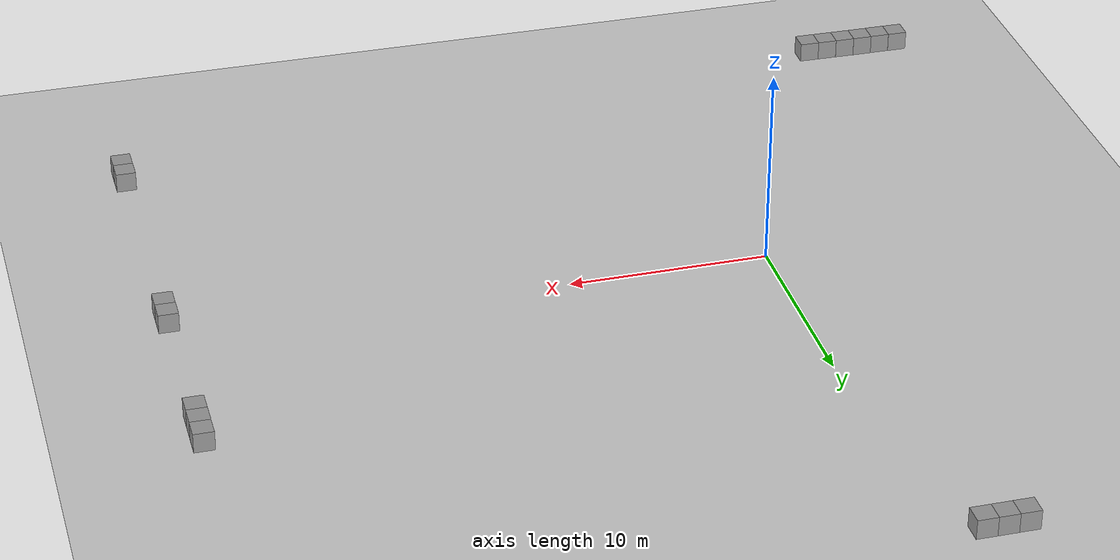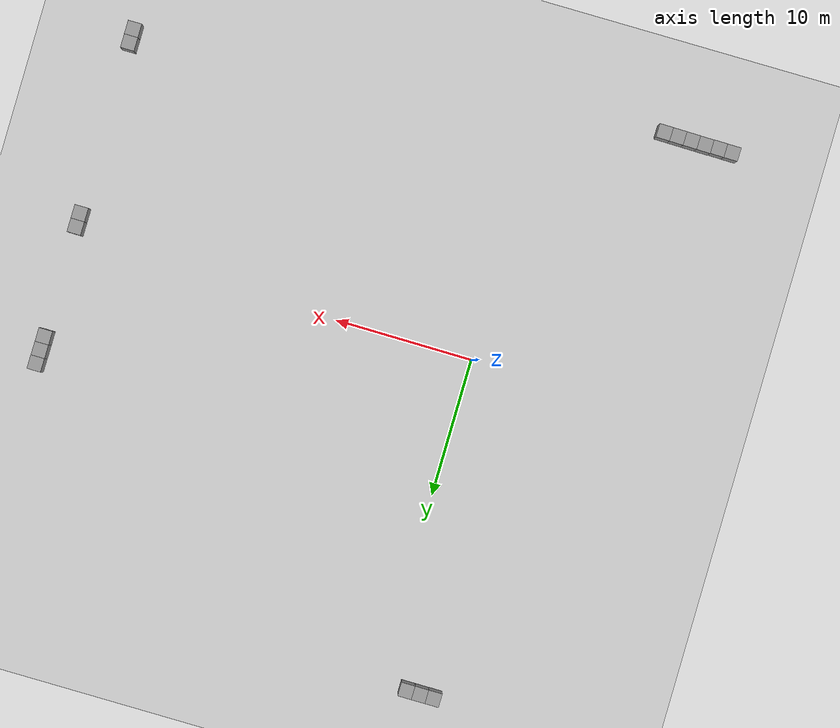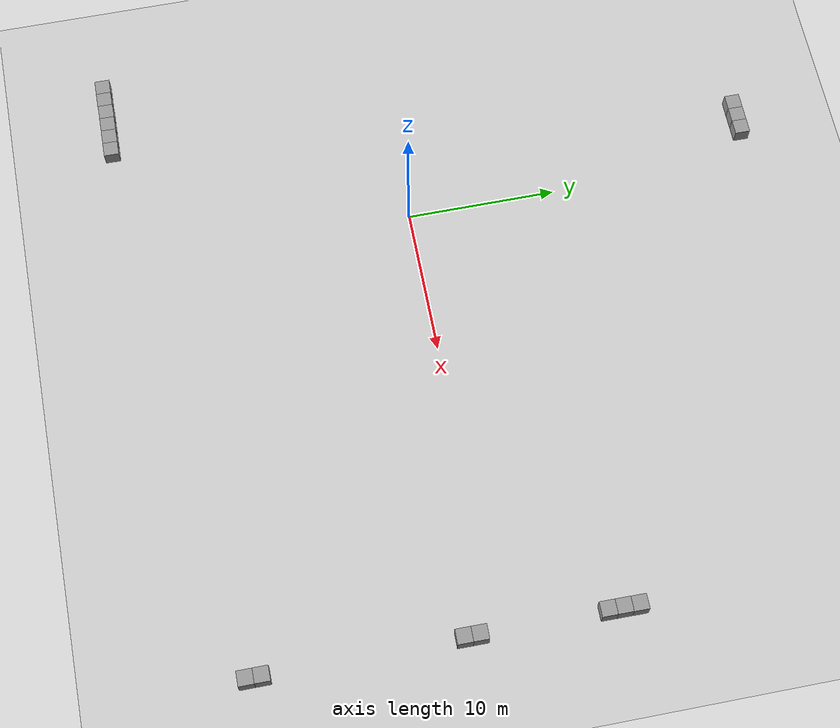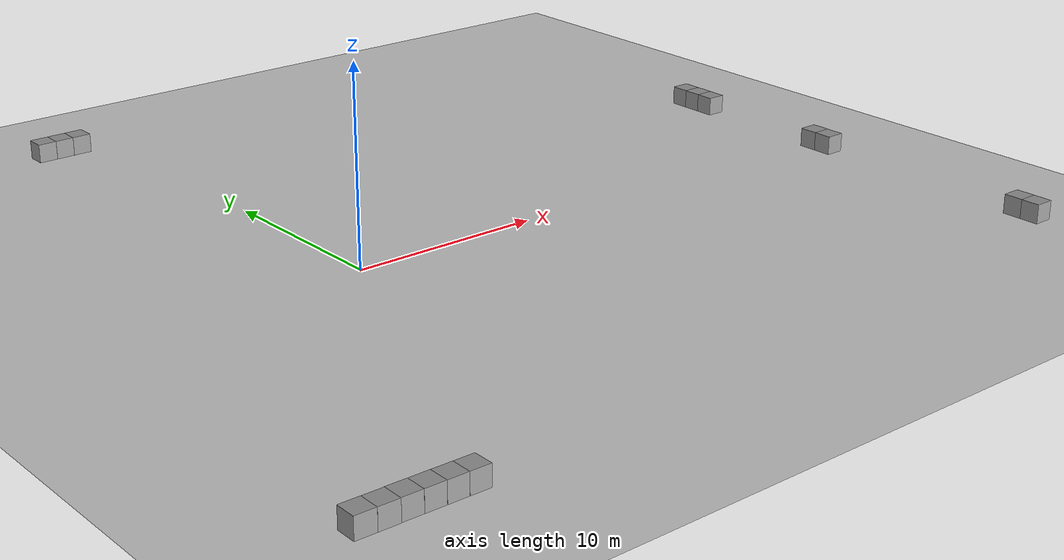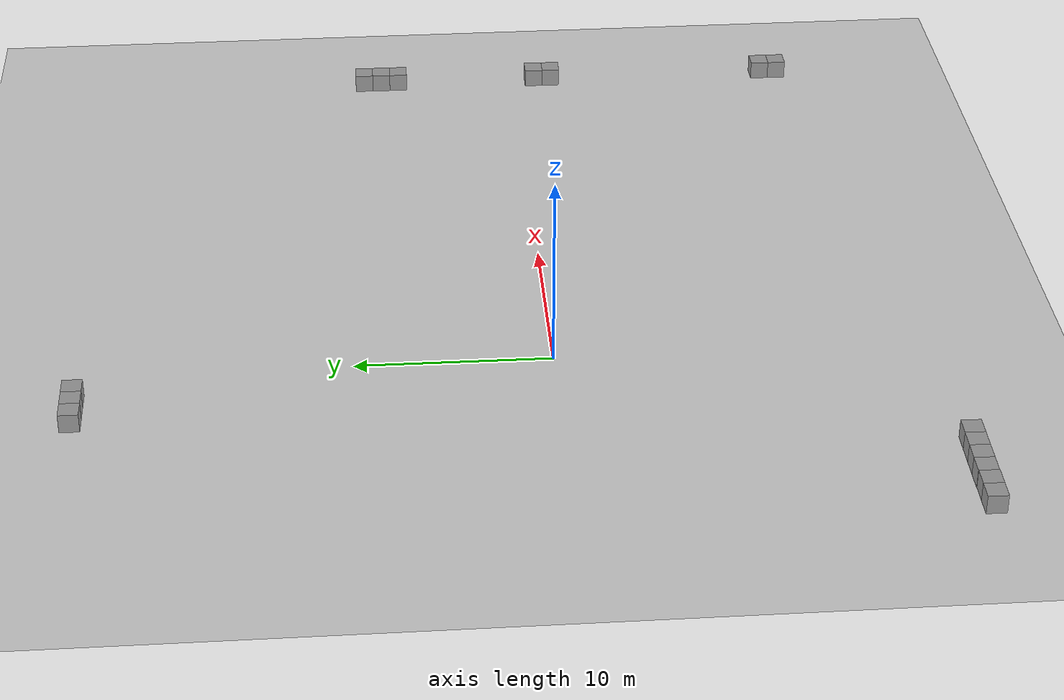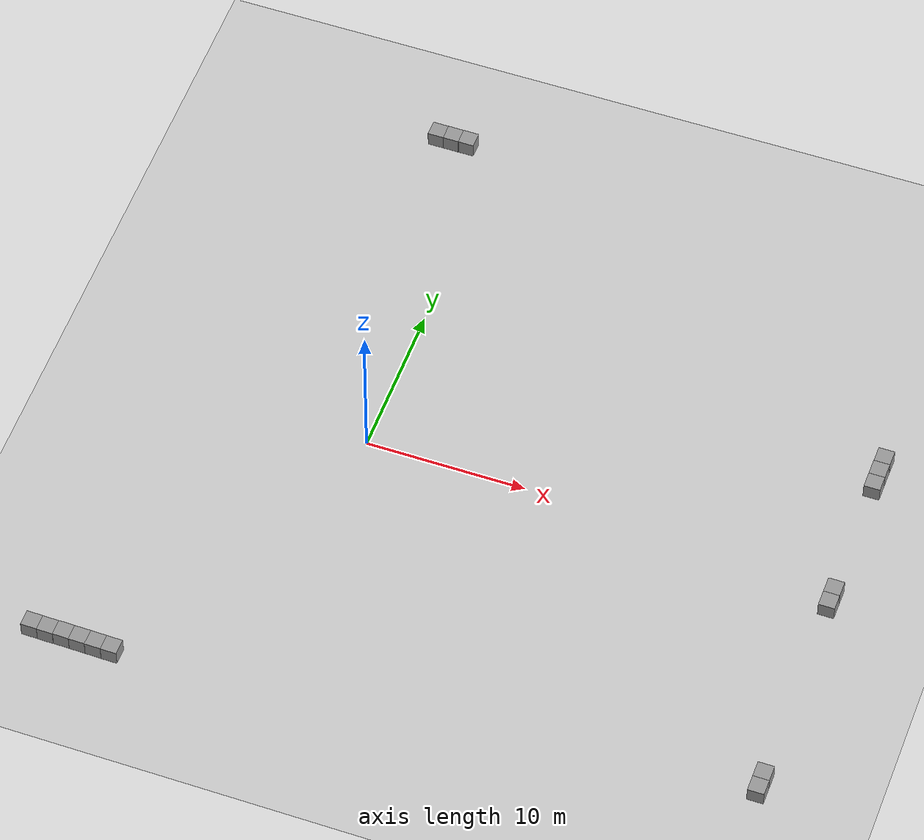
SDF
<sdf version="1.6">
 <world name="default">
  <model name="ground_plane">
   <static>1</static>
   <link name="link">
    <collision name="collision">
     <geometry><plane><normal>0 0 1</normal><size>100 100</size></plane></geometry>
     <surface><friction><ode><mu>100</mu><mu2>50</mu2></ode></friction></surface>
    </collision>
    <visual name="visual">
     <cast_shadows>0</cast_shadows>
     <geometry><plane><normal>0 0 1</normal><size>100 100</size></plane></geometry>
     <material>
      <script><uri>file://media/materials/scripts/gazebo.material</uri><name>Gazebo/Grey</name></script>
     </material>
    </visual>
   </link>
  </model>
  <light name="sun" type="directional">
   <pose>0 0 10 0 -0 0</pose>
   <diffuse>0.8 0.8 0.8 1</diffuse>
   <specular>0.1 0.1 0.1 1</specular>
   <attenuation>
    <range>1000</range>
    <constant>0.9</constant>
    <linear>0.01</linear>
    <quadratic>0.001</quadratic>
   </attenuation>
   <direction>-0.5 0.5 -1</direction>
  </light>
  <gravity>0 0 -9.8</gravity>
  <magnetic_field>6e-06 2.3e-05 -4.2e-05</magnetic_field>
  <atmosphere type="adiabatic"/>
  <physics name="default_physics" default="0" type="ode">
   <max_step_size>0.001</max_step_size>
   <real_time_factor>1</real_time_factor>
   <real_time_update_rate>1000</real_time_update_rate>
  </physics>
  <scene><ambient>0.4 0.4 0.4 1</ambient><background>0.7 0.7 0.7 1</background><shadows>1</shadows></scene>
  <spherical_coordinates>
   <surface_model>EARTH_WGS84</surface_model>
   <latitude_deg>0</latitude_deg>
   <longitude_deg>0</longitude_deg>
   <elevation>0</elevation>
   <heading_deg>0</heading_deg>
  </spherical_coordinates>
  <model name="unit_box_0">
   <pose>-4.06034 23.7047 0.499995 -1e-05 -0 -0.003233</pose>
   <link name="link">
    <inertial>
     <mass>1</mass>
     <inertia>
      <ixx>0.166667</ixx>
      <ixy>0</ixy>
      <ixz>0</ixz>
      <iyy>0.166667</iyy>
      <iyz>0</iyz>
      <izz>0.166667</izz>
     </inertia>
    </inertial>
    <collision name="collision"><geometry><box><size>1 1 1</size></box></geometry></collision>
    <visual name="visual">
     <geometry><box><size>1 1 1</size></box></geometry>
     <material>
      <script><name>Gazebo/Grey</name><uri>file://media/materials/scripts/gazebo.material</uri></script>
     </material>
    </visual>
   </link>
  </model>
  <model name="unit_box_0_clone">
   <pose>-3.06031 23.7067 0.499995 0 -1e-05 -0.003245</pose>
   <link name="link">
    <inertial>
     <mass>1</mass>
     <inertia>
      <ixx>0.166667</ixx>
      <ixy>0</ixy>
      <ixz>0</ixz>
      <iyy>0.166667</iyy>
      <iyz>0</iyz>
      <izz>0.166667</izz>
     </inertia>
    </inertial>
    <collision name="collision"><geometry><box><size>1 1 1</size></box></geometry></collision>
    <visual name="visual">
     <geometry><box><size>1 1 1</size></box></geometry>
     <material>
      <script><name>Gazebo/Grey</name><uri>file://media/materials/scripts/gazebo.material</uri></script>
     </material>
    </visual>
   </link>
  </model>
  <model name="unit_box_0_clone_0">
   <pose>-2.06028 23.7068 0.499995 -1e-05 -0 -0.003235</pose>
   <link name="link">
    <inertial>
     <mass>1</mass>
     <inertia>
      <ixx>0.166667</ixx>
      <ixy>0</ixy>
      <ixz>0</ixz>
      <iyy>0.166667</iyy>
      <iyz>0</iyz>
      <izz>0.166667</izz>
     </inertia>
    </inertial>
    <collision name="collision"><geometry><box><size>1 1 1</size></box></geometry></collision>
    <visual name="visual">
     <geometry><box><size>1 1 1</size></box></geometry>
     <material>
      <script><name>Gazebo/Grey</name><uri>file://media/materials/scripts/gazebo.material</uri></script>
     </material>
    </visual>
   </link>
  </model>
  <model name="unit_box_0_clone_1">
   <pose>-8.59461 -19.2136 0.499995 1e-05 -0 -0.010423</pose>
   <link name="link">
    <inertial>
     <mass>1</mass>
     <inertia>
      <ixx>0.166667</ixx>
      <ixy>0</ixy>
      <ixz>0</ixz>
      <iyy>0.166667</iyy>
      <iyz>0</iyz>
      <izz>0.166667</izz>
     </inertia>
    </inertial>
    <collision name="collision"><geometry><box><size>1 1 1</size></box></geometry></collision>
    <visual name="visual">
     <geometry><box><size>1 1 1</size></box></geometry>
     <material>
      <script><name>Gazebo/Grey</name><uri>file://media/materials/scripts/gazebo.material</uri></script>
     </material>
    </visual>
   </link>
  </model>
  <model name="unit_box_0_clone_2">
   <pose>-9.59454 -19.1989 0.499995 -1e-05 -0 -0.010466</pose>
   <link name="link">
    <inertial>
     <mass>1</mass>
     <inertia>
      <ixx>0.166667</ixx>
      <ixy>0</ixy>
      <ixz>0</ixz>
      <iyy>0.166667</iyy>
      <iyz>0</iyz>
      <izz>0.166667</izz>
     </inertia>
    </inertial>
    <collision name="collision"><geometry><box><size>1 1 1</size></box></geometry></collision>
    <visual name="visual">
     <geometry><box><size>1 1 1</size></box></geometry>
     <material>
      <script><name>Gazebo/Grey</name><uri>file://media/materials/scripts/gazebo.material</uri></script>
     </material>
    </visual>
   </link>
  </model>
  <model name="unit_box_0_clone_3">
   <pose>-10.5946 -19.1852 0.499995 -1e-05 0 -0.010497</pose>
   <link name="link">
    <inertial>
     <mass>1</mass>
     <inertia>
      <ixx>0.166667</ixx>
      <ixy>0</ixy>
      <ixz>0</ixz>
      <iyy>0.166667</iyy>
      <iyz>0</iyz>
      <izz>0.166667</izz>
     </inertia>
    </inertial>
    <collision name="collision"><geometry><box><size>1 1 1</size></box></geometry></collision>
    <visual name="visual">
     <geometry><box><size>1 1 1</size></box></geometry>
     <material>
      <script><name>Gazebo/Grey</name><uri>file://media/materials/scripts/gazebo.material</uri></script>
     </material>
    </visual>
   </link>
  </model>
  <model name="unit_box_0_clone_4">
   <pose>-11.5946 -19.1693 0.499995 0 1e-05 -0.010493</pose>
   <link name="link">
    <inertial>
     <mass>1</mass>
     <inertia>
      <ixx>0.166667</ixx>
      <ixy>0</ixy>
      <ixz>0</ixz>
      <iyy>0.166667</iyy>
      <iyz>0</iyz>
      <izz>0.166667</izz>
     </inertia>
    </inertial>
    <collision name="collision"><geometry><box><size>1 1 1</size></box></geometry></collision>
    <visual name="visual">
     <geometry><box><size>1 1 1</size></box></geometry>
     <material>
      <script><name>Gazebo/Grey</name><uri>file://media/materials/scripts/gazebo.material</uri></script>
     </material>
    </visual>
   </link>
  </model>
  <model name="unit_box_0_clone_5">
   <pose>-12.5948 -19.1733 0.499995 -1e-05 -0 -0.010555</pose>
   <link name="link">
    <inertial>
     <mass>1</mass>
     <inertia>
      <ixx>0.166667</ixx>
      <ixy>0</ixy>
      <ixz>0</ixz>
      <iyy>0.166667</iyy>
      <iyz>0</iyz>
      <izz>0.166667</izz>
     </inertia>
    </inertial>
    <collision name="collision"><geometry><box><size>1 1 1</size></box></geometry></collision>
    <visual name="visual">
     <geometry><box><size>1 1 1</size></box></geometry>
     <material>
      <script><name>Gazebo/Grey</name><uri>file://media/materials/scripts/gazebo.material</uri></script>
     </material>
    </visual>
   </link>
  </model>
  <model name="unit_box_0_clone_6">
   <pose>-13.5947 -19.1578 0.499995 -0 -1e-05 -0.010504</pose>
   <link name="link">
    <inertial>
     <mass>1</mass>
     <inertia>
      <ixx>0.166667</ixx>
      <ixy>0</ixy>
      <ixz>0</ixz>
      <iyy>0.166667</iyy>
      <iyz>0</iyz>
      <izz>0.166667</izz>
     </inertia>
    </inertial>
    <collision name="collision"><geometry><box><size>1 1 1</size></box></geometry></collision>
    <visual name="visual">
     <geometry><box><size>1 1 1</size></box></geometry>
     <material>
      <script><name>Gazebo/Grey</name><uri>file://media/materials/scripts/gazebo.material</uri></script>
     </material>
    </visual>
   </link>
  </model>
  <model name="unit_box_0_clone_7">
   <pose>29.4893 8.80209 0.499995 0 1e-05 -0.004263</pose>
   <link name="link">
    <inertial>
     <mass>1</mass>
     <inertia>
      <ixx>0.166667</ixx>
      <ixy>0</ixy>
      <ixz>0</ixz>
      <iyy>0.166667</iyy>
      <iyz>0</iyz>
      <izz>0.166667</izz>
     </inertia>
    </inertial>
    <collision name="collision"><geometry><box><size>1 1 1</size></box></geometry></collision>
    <visual name="visual">
     <geometry><box><size>1 1 1</size></box></geometry>
     <material>
      <script><name>Gazebo/Grey</name><uri>file://media/materials/scripts/gazebo.material</uri></script>
     </material>
    </visual>
   </link>
  </model>
  <model name="unit_box_0_clone_8">
   <pose>29.4773 7.80206 0.499995 1e-05 0 -0.004377</pose>
   <link name="link">
    <inertial>
     <mass>1</mass>
     <inertia>
      <ixx>0.166667</ixx>
      <ixy>0</ixy>
      <ixz>0</ixz>
      <iyy>0.166667</iyy>
      <iyz>0</iyz>
      <izz>0.166667</izz>
     </inertia>
    </inertial>
    <collision name="collision"><geometry><box><size>1 1 1</size></box></geometry></collision>
    <visual name="visual">
     <geometry><box><size>1 1 1</size></box></geometry>
     <material>
      <script><name>Gazebo/Grey</name><uri>file://media/materials/scripts/gazebo.material</uri></script>
     </material>
    </visual>
   </link>
  </model>
  <model name="unit_box_0_clone_9">
   <pose>29.4726 6.80193 0.499995 0 -1e-05 -0.004368</pose>
   <link name="link">
    <inertial>
     <mass>1</mass>
     <inertia>
      <ixx>0.166667</ixx>
      <ixy>0</ixy>
      <ixz>0</ixz>
      <iyy>0.166667</iyy>
      <iyz>0</iyz>
      <izz>0.166667</izz>
     </inertia>
    </inertial>
    <collision name="collision"><geometry><box><size>1 1 1</size></box></geometry></collision>
    <visual name="visual">
     <geometry><box><size>1 1 1</size></box></geometry>
     <material>
      <script><name>Gazebo/Grey</name><uri>file://media/materials/scripts/gazebo.material</uri></script>
     </material>
    </visual>
   </link>
  </model>
  <model name="unit_box_0_clone_10">
   <pose>29.4636 -1.24829 0.499995 0 -1e-05 -0.005786</pose>
   <link name="link">
    <inertial>
     <mass>1</mass>
     <inertia>
      <ixx>0.166667</ixx>
      <ixy>0</ixy>
      <ixz>0</ixz>
      <iyy>0.166667</iyy>
      <iyz>0</iyz>
      <izz>0.166667</izz>
     </inertia>
    </inertial>
    <collision name="collision"><geometry><box><size>1 1 1</size></box></geometry></collision>
    <visual name="visual">
     <geometry><box><size>1 1 1</size></box></geometry>
     <material>
      <script><name>Gazebo/Grey</name><uri>file://media/materials/scripts/gazebo.material</uri></script>
     </material>
    </visual>
   </link>
  </model>
  <model name="unit_box_0_clone_11">
   <pose>29.4599 -2.24839 0.5 0 0 -0.005857</pose>
   <link name="link">
    <inertial>
     <mass>1</mass>
     <inertia>
      <ixx>0.166667</ixx>
      <ixy>0</ixy>
      <ixz>0</ixz>
      <iyy>0.166667</iyy>
      <iyz>0</iyz>
      <izz>0.166667</izz>
     </inertia>
    </inertial>
    <collision name="collision"><geometry><box><size>1 1 1</size></box></geometry></collision>
    <visual name="visual">
     <geometry><box><size>1 1 1</size></box></geometry>
     <material>
      <script><name>Gazebo/Grey</name><uri>file://media/materials/scripts/gazebo.material</uri></script>
     </material>
    </visual>
   </link>
  </model>
  <model name="unit_box_0_clone_12">
   <pose>29.4573 -14.7777 0.5 0 0 -0.002869</pose>
   <link name="link">
    <inertial>
     <mass>1</mass>
     <inertia>
      <ixx>0.166667</ixx>
      <ixy>0</ixy>
      <ixz>0</ixz>
      <iyy>0.166667</iyy>
      <iyz>0</iyz>
      <izz>0.166667</izz>
     </inertia>
    </inertial>
    <collision name="collision"><geometry><box><size>1 1 1</size></box></geometry></collision>
    <visual name="visual">
     <geometry><box><size>1 1 1</size></box></geometry>
     <material>
      <script><name>Gazebo/Grey</name><uri>file://media/materials/scripts/gazebo.material</uri></script>
     </material>
    </visual>
   </link>
  </model>
  <model name="unit_box_0_clone_13">
   <pose>29.458 -15.7781 0.499985 -1e-05 0 -0.001958</pose>
   <link name="link">
    <inertial>
     <mass>1</mass>
     <inertia>
      <ixx>0.166667</ixx>
      <ixy>0</ixy>
      <ixz>0</ixz>
      <iyy>0.166667</iyy>
      <iyz>0</iyz>
      <izz>0.166667</izz>
     </inertia>
    </inertial>
    <collision name="collision"><geometry><box><size>1 1 1</size></box></geometry></collision>
    <visual name="visual">
     <geometry><box><size>1 1 1</size></box></geometry>
     <material>
      <script><name>Gazebo/Grey</name><uri>file://media/materials/scripts/gazebo.material</uri></script>
     </material>
    </visual>
   </link>
  </model>
 </world>
</sdf>
